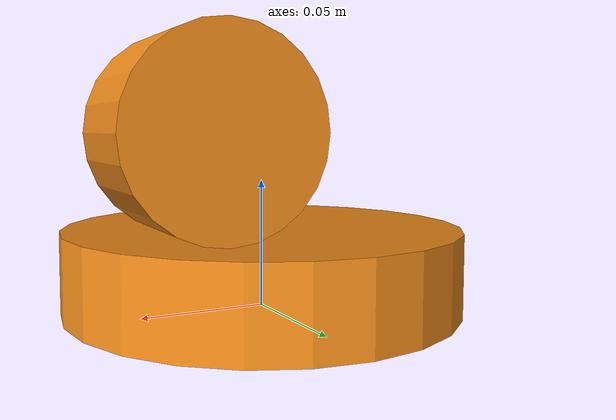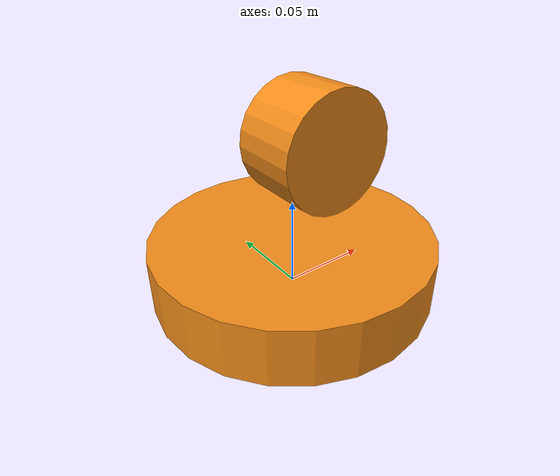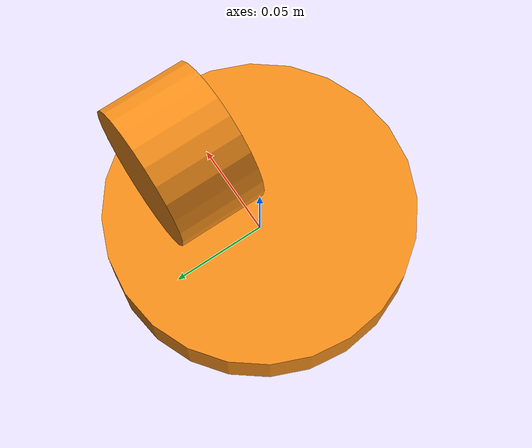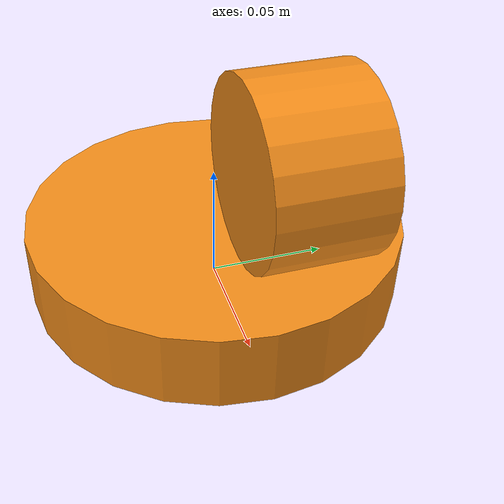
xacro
<?xml version="1.0"?>
<robot xmlns:xacro="http://www.ros.org/wiki/xacro">

  <link name="link1_part1">
    <visual>
      <geometry>
        <cylinder length="0.032" radius="0.078"/>
      </geometry>
      <origin xyz="0 0 0.016" rpy="0 0 0"/>
      <material name="orange"/>
    </visual>
  </link>

  <link name="link1_part2">
    <visual>
      <geometry>
        <cylinder length="0.045" radius="0.037"/>
      </geometry>
      <origin xyz="0 0.0225 0" rpy="1.57075 0 0"/>
      <material name="orange"/>
    </visual>
  </link>

  <joint name="link1_fixed" type="fixed">
    <parent link="link1_part1"/>
    <child link="link1_part2"/>
    <origin xyz="0.033 0 0.069" rpy="0 0 0"/>
  </joint>
</robot>
